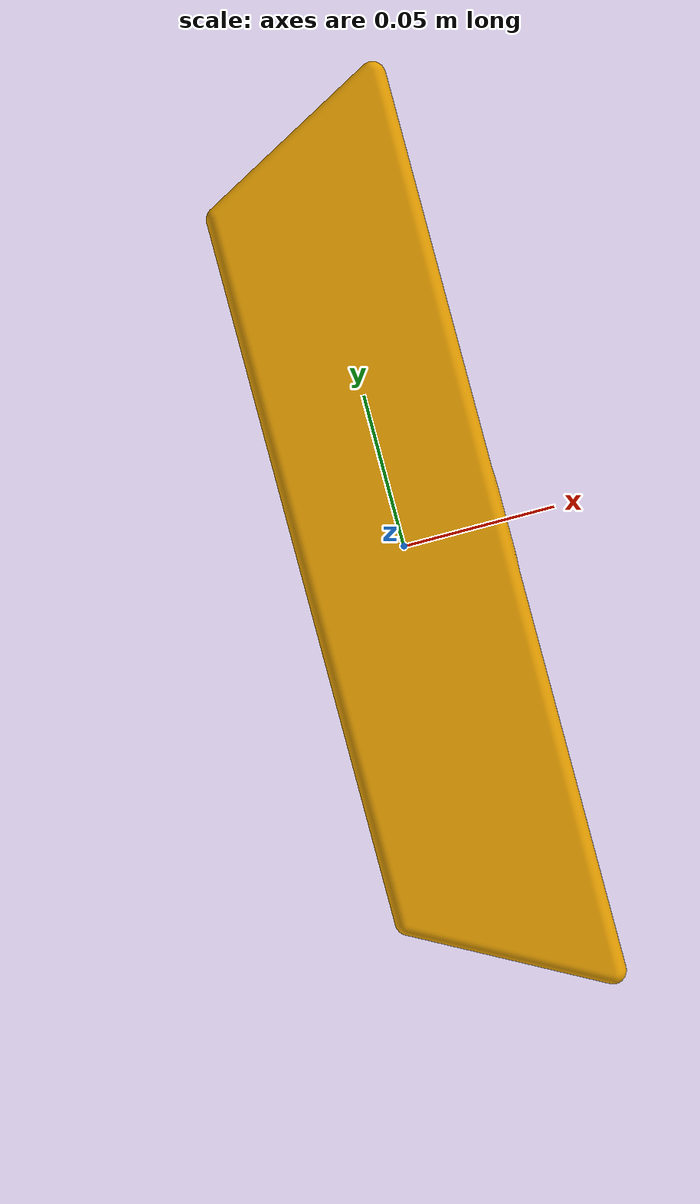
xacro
<?xml version="1.0"?>
    <robot xmlns:xacro="http://ros.org/wiki/xacro" name="anya_kinectkinect">

    <link name="kinect_link">
        <visual>
            <origin xyz="0 0 0" rpy="0 0 1.57079632679"/>
            <geometry>
                <mesh filename="package://anya_final/meshes/sensors/kinect.dae" />
            </geometry>
        </visual>
        <collision>
            <origin xyz="0 0 0" rpy="0 0 1.57079632679"/>
            <geometry>
                <mesh filename="package://anya_final/meshes/sensors/kinect.stl" />
            </geometry>
        </collision>
        <inertial>
            <origin xyz="0.0 0.0 0.0" rpy="0.0 0.0 1.5707932"/>
            <mass value="10.0"/>
            <inertia ixx="0.0" ixy="0.0" ixz="0.0" iyy="0.0" iyz="0.0" izz="0.0"/>
        </inertial>
    </link>

        <link name="kinect_depth_frame"/>
        <joint name="kinect_depth_joint" type="fixed">
            <parent link="kinect_link"/>
            <child link="kinect_depth_frame" />
            <origin xyz="0 -0.02  0" rpy="0 0 0"/>
        </joint>

        <link name="kinect_rgb_frame"/>
        <joint name="kinect_rgb_joint" type="fixed">
            <parent link="kinect_link"/>
            <child link="kinect_rgb_frame" />
            <origin xyz="0 -0.045  0" rpy="0 0 0"/>
        </joint>

        <link name="kinect_depth_optical_frame"/>
        <joint name="kinect_depth_optical_joint" type="fixed">
            <parent link="kinect_depth_frame"/>
            <child link="kinect_depth_optical_frame" />
            <origin xyz="0 0 0" rpy="1.57079632679 0 1.57079632679"/>
        </joint>

        <link name="kinect_rgb_optical_frame"/>
        <joint name="kinect_rgb_optical_joint" type="fixed">
            <parent link="kinect_rgb_frame"/>
            <child link="kinect_rgb_optical_frame" />
            <origin xyz="0 0 0" rpy="1.57079632679 0 1.57079632679"/>
        </joint>

        <gazebo reference="kinect_link">
            <sensor type="depth" name="kinect">
                <always_on>true</always_on>
                <update_rate>20.0</update_rate>
                <camera>
                    <horizontal_fov>1.047198</horizontal_fov>
                    <image>
                        <format>R8G8B8</format>
                        <width>640</width>
                        <height>480</height>
                    </image>
                    <clip>
                        <near>0.05</near>
                        <far>3.0</far>
                    </clip>
                </camera>
                <plugin name="kinect_controller" filename="libgazebo_ros_openni_kinect.so">
                    <cameraName>anya_kinect</cameraName>
                    <alwaysOn>true</alwaysOn>
                    <updateRate>0</updateRate>
                    <imageTopicName>/camera/color/image_raw</imageTopicName>
                    <cameraInfoTopicName>/camera/color/camera_info</cameraInfoTopicName>
                    <depthImageTopicName>/camera/depth/image_raw</depthImageTopicName>
                    <depthImageCameraInfoTopicName>/camera/depth/camera_info</depthImageCameraInfoTopicName>
                    <pointCloudTopicName>/camera/depth/points</pointCloudTopicName>
                    <frameName>kinect_link</frameName>
                    <baseline>0.1</baseline>
                    <distortion_k1>0.0</distortion_k1>
                    <distortion_k2>0.0</distortion_k2>
                    <distortion_k3>0.0</distortion_k3>
                    <distortion_t1>0.0</distortion_t1>
                    <distortion_t2>0.0</distortion_t2>
                    <pointCloudCutoff>0.5</pointCloudCutoff>
                    <pointCloudCutoffMax>3.0</pointCloudCutoffMax>
                </plugin>
            </sensor>
        </gazebo>
</robot>
